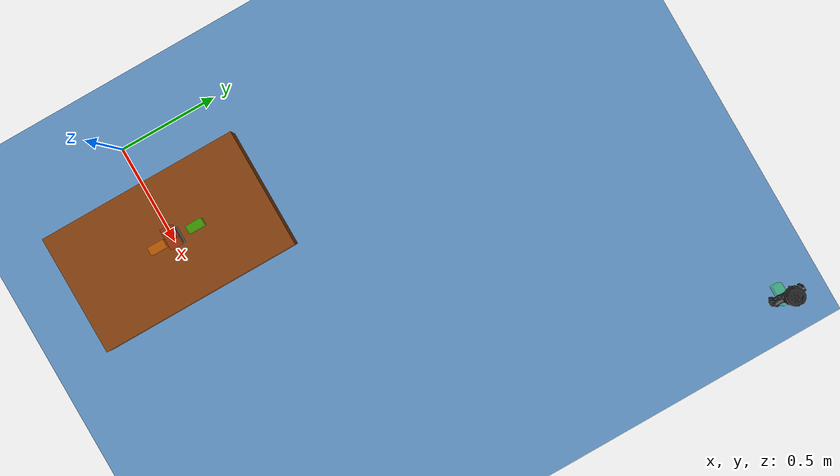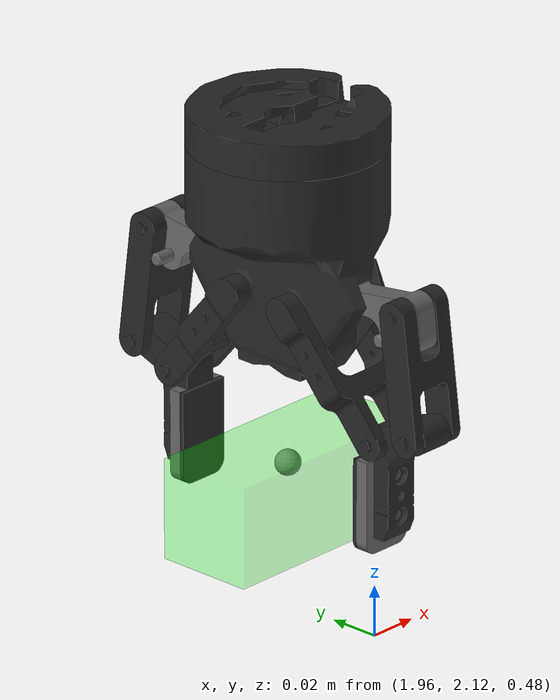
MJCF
<mujoco model="unnamed_model">
  <compiler autolimits="true" angle="radian"/>
  <option timestep="0.001" gravity="0 0 -9.8100000000000005" integrator="implicitfast"/>
  <statistic meansize="0.029999999999999999" extent="0.29999999999999999" center="0.29999999999999999 0 0"/>
  <default>
    <default class="/"/>
    <default class="lab/"/>
    <default class="wall/"/>
    <default class="block_green/"/>
    <default class="block_orange/"/>
    <default class="block_blue/"/>
    <default class="lego_bricks/"/>
    <default class="lego_bricks_1/"/>
    <default class="lego_bricks_2/"/>
    <default class="gripper_collision_with_block/2f85">
      <mesh scale="0.001 0.001 0.001"/>
      <joint axis="1 0 0"/>
      <geom margin="0.001"/>
      <general biastype="affine"/>
      <default class="gripper_collision_with_block/visual2">
        <geom type="mesh" contype="0" conaffinity="0" group="2" material="gripper_collision_with_block/gray2"/>
      </default>
      <default class="gripper_collision_with_block/driver">
        <joint solreflimit="0.00500 1" solimplimit="0.94999999999999996 0.98999999999999999 0.001" range="0 0.80000000000000004" armature="0.00500" damping="0.100"/>
      </default>
      <default class="gripper_collision_with_block/follower">
        <joint pos="0 -0.017999999999999999 0.0064999999999999997" solreflimit="0.00500 1" solimplimit="0.94999999999999996 0.98999999999999999 0.001" range="-0.872664 0.872664"/>
      </default>
      <default class="gripper_collision_with_block/spring_link">
        <joint stiffness="0.050000000000000003" range="-0.29670597283 0.80000000000000004" springref="2.62" damping="0.00125"/>
      </default>
      <default class="gripper_collision_with_block/coupler">
        <joint solreflimit="0.00500 1" solimplimit="0.94999999999999996 0.98999999999999999 0.001" range="-1.57 0"/>
      </default>
      <default class="gripper_collision_with_block/collision2">
        <geom type="box" condim="3" group="3" rgba="1 0.42352899999999999 0.039215699999999999 1"/>
        <default class="gripper_collision_with_block/pad_box1">
          <geom type="box" priority="1" size="0.029999999999999999 0.01 0.02" rgba="0.55000000000000004 0.55000000000000004 0.55000000000000004 1" friction="0.69999999999999996" mass="0" solref="0.00400 1" solimp="0.94999999999999996 0.98999999999999999 0.001" pos="0 -0.0025999999999999999 0.028125000000000001"/>
        </default>
        <default class="gripper_collision_with_block/pad_box2">
          <geom type="box" priority="1" size="0.010999999999999999 0.00400 0.0093749999999999997" rgba="0.450 0.450 0.450 1" friction="0.59999999999999998" mass="0" solref="0.00400 1" solimp="0.94999999999999996 0.98999999999999999 0.001" pos="0 -0.0025999999999999999 0.0093749999999999997"/>
        </default>
      </default>
    </default>
  </default>
  <asset>
    <texture name="lab//unnamed_texture_0" type="skybox" builtin="gradient" rgb1="0.59999999999999998 0.80000000000000004 1" rgb2="0.200 0.200 0.200" width="512" height="3072"/>
    <texture name="lab/groundplane" type="2d" builtin="checker" rgb1="0.5 0.69999999999999996 0.9" rgb2="0.29999999999999999 0.5 0.69999999999999996" mark="edge" markrgb="0.9 0.9 0.9" width="300" height="300"/>
    <material name="lab/groundplane" class="lab/" texture="lab/groundplane" texrepeat="5 5" texuniform="true" reflectance="0.4"/>
    <material name="wall/wood" class="wall/" specular="0.100" shininess="0.200" reflectance="0.050000000000000003" rgba="0.55000000000000004 0.27000000000000002 0.070000000000000007 1"/>
    <material name="wall/aluminum" class="wall/" specular="0.80000000000000004" shininess="0.9" reflectance="0.59999999999999998" rgba="0.80000000000000004 0.80000000000000004 0.80000000000000004 1"/>
    <material name="gripper_collision_with_block/black2" class="gripper_collision_with_block/2f85" rgba="0.14899999999999999 0.14899999999999999 0.14899999999999999 1"/>
    <material name="gripper_collision_with_block/wood2" class="gripper_collision_with_block/2f85" rgba="0.56000000000000005 0.37 0.28999999999999998 1"/>
    <material name="gripper_collision_with_block/gray2" class="gripper_collision_with_block/2f85" rgba="0.4 0.4 0.4 1"/>
    <mesh name="gripper_collision_with_block/base_mount" class="gripper_collision_with_block/2f85" file="base_mount-22e57178defe77afb6bdd333bfae16607f1eb3dd.stl"/>
    <mesh name="gripper_collision_with_block/base" class="gripper_collision_with_block/2f85" file="base-e5dacbcc3971bfdb549ff8c7d38ea873ca7f2933.stl"/>
    <mesh name="gripper_collision_with_block/driver" class="gripper_collision_with_block/2f85" file="driver-97efa43184c575b31ff1f3980641896f51492762.stl"/>
    <mesh name="gripper_collision_with_block/coupler" class="gripper_collision_with_block/2f85" file="coupler-0a4240dc94992944cca6ec9e270ff1658fa86c55.stl"/>
    <mesh name="gripper_collision_with_block/follower" class="gripper_collision_with_block/2f85" file="follower-39e4b8048f1395ee38cb45b37b5fec0e6f2aaec9.stl"/>
    <mesh name="gripper_collision_with_block/pad" class="gripper_collision_with_block/2f85" file="pad-e6a633b2c81740b1f783ec4c6e695c8cc570f09d.stl"/>
    <mesh name="gripper_collision_with_block/silicone_pad" class="gripper_collision_with_block/2f85" file="silicone_pad-c284384f3ca6dcdc24d6188a5d1a2d4c42c412ac.stl"/>
    <mesh name="gripper_collision_with_block/spring_link" class="gripper_collision_with_block/2f85" file="spring_link-8f50234325193b84e9f86b7a63a24560a389c9bf.stl"/>
  </asset>
  <worldbody>
    <body name="ground" mocap="false" pos="0 0 0">
      <site name="ground_site_attach" class="/"/>
    </body>
    <body name="lab/">
      <light name="lab//unnamed_light_0" class="lab/" directional="true" pos="0 0 1.5" dir="0 0 -1"/>
      <geom name="lab/floor" class="lab/" type="plane" size="0 0 0.050000000000000003" material="lab/groundplane"/>
      <site name="lab/ground_attach" class="lab/" group="0" rgba="1 0 0 1" size="0.01" pos="0 0 0"/>
      </body>
    <body name="wall1" mocap="false" pos="0.5 0 0" quat="0.707 0 0 0.707">
      <site name="wall1_site_attach" class="/"/>
      <body name="wall/">
        <body name="wall/Wall" pos="0 0 0">
          <geom name="wall/table_geom" class="wall/" type="box" condim="3" size="0.5 0.29999999999999999 0.058000000000000003" material="wall/wood" pos="0 0 0.058000000000000003"/>
        </body>
      </body>
    </body>
    <body pos="0.5 0.15 0.116" quat="0.707 0 0 0.707" name="block_green/">
      <freejoint name="block_green/"/>
      <body name="block_green/block_green" pos="0 0 0.02">
        <geom name="block_green/block_green_geom" class="block_green/" type="box" contype="2" conaffinity="1" condim="3" size="0.0400 0.02 0.02" rgba="0 1 0 0.5"/>
        <inertial pos="0 0 0" mass="0.200" diaginertia="0.000230 9.2e-05 0.000230"/>
      </body>
    </body>
    <body pos="0.5 -0.05 0.116" quat="0.707 0 0 0.707" name="block_orange/">
      <freejoint name="block_orange/"/>
      <body name="block_orange/block_orange" pos="0 0 0.02">
        <geom name="block_orange/block_orange_geom" class="block_orange/" type="box" contype="2" conaffinity="1" condim="3" size="0.0400 0.02 0.02" rgba="1 0.5 0 0.5"/>
        <inertial pos="0 0 0" mass="0.200" diaginertia="0.000230 9.2e-05 0.000230"/>
      </body>
    </body>
    <body pos="0.5 0.15 0.116" quat="0.707 0 0 0.707" name="block_blue/">
      <freejoint name="block_blue/"/>
      <body name="block_blue/block_blue" pos="0 0 0.02">
        <geom name="block_blue/block_blue_geom" class="block_blue/" type="box" contype="2" conaffinity="1" condim="3" size="0.0400 0.02 0.02" rgba="0 0 1 0.5"/>
        <inertial pos="0 0 0" mass="0.200" diaginertia="0.000230 9.2e-05 0.000230"/>
      </body>
    </body>
    <body name="blockwall1" mocap="false" pos="0.5 0.050000000000000003 0.116">
      <site name="blockwall1_site_attach" class="/"/>
      <body name="lego_bricks/">
        <body name="lego_bricks/block_cyan" pos="0 0 0.02">
          <geom name="lego_bricks/block_cyan_geom" class="lego_bricks/" type="box" condim="1" size="0.0400 0.02 0.02" rgba="0 1 1 0.5"/>
          <inertial pos="0 0 0" mass="0.200" diaginertia="0.000230 9.2e-05 0.000230"/>
        </body>
      </body>
    </body>
    <body name="blockwall2" mocap="false" pos="0.5 0.050000000000000003 0.156">
      <site name="blockwall2_site_attach" class="/"/>
      <body name="lego_bricks_1/">
        <body name="lego_bricks_1/block_magenta" pos="0 0 0.02">
          <geom name="lego_bricks_1/block_magenta_geom" class="lego_bricks_1/" type="box" condim="1" size="0.0400 0.02 0.02" rgba="1 0 1 0.5"/>
          <inertial pos="0 0 0" mass="0.200" diaginertia="0.000230 9.2e-05 0.000230"/>
        </body>
      </body>
    </body>
    <body name="blockwall3" mocap="false" pos="0.5 0.050000000000000003 0.196">
      <site name="blockwall3_site_attach" class="/"/>
      <body name="lego_bricks_2/">
        <body name="lego_bricks_2/block_yellow" pos="0 0 0.02">
          <geom name="lego_bricks_2/block_yellow_geom" class="lego_bricks_2/" type="box" contype="4" conaffinity="4" condim="1" size="0.0400 0.02 0.02" rgba="1 1 0 0.5"/>
          <geom name="lego_bricks_2/block_yellow_collision" class="lego_bricks_2/" type="box" contype="4" conaffinity="4" condim="1" group="2" size="0.050000000000000003 0.0250 0.029999999999999999" rgba="1 0 0 0.100" pos="0 0 0.01"/>
          <inertial pos="0 0 0" mass="0.200" diaginertia="0.000230 9.2e-05 0.000230"/>
        </body>
      </body>
    </body>
    <body pos="2 2.2000000000000002 0.5" name="gripper_collision_with_block/">
      <freejoint name="gripper_collision_with_block/"/>
      <body name="gripper_collision_with_block/base_mount" childclass="gripper_collision_with_block/2f85" pos="0 0 0.14499999999999999" quat="0 1 0 0">
        <inertial pos="0 0 0" quat="1 0 0 0" mass="0.0001" diaginertia="9.9999999999999995e-07 9.9999999999999995e-07 9.9999999999999995e-07"/>
        <geom name="gripper_collision_with_block//unnamed_geom_0" class="gripper_collision_with_block/visual2" material="gripper_collision_with_block/black2" mesh="gripper_collision_with_block/base_mount"/>
        <geom name="gripper_collision_with_block/col_mount" type="cylinder" contype="1" conaffinity="1" group="3" size="0.0400 0.022499999999999999" rgba="1 0.42352899999999999 0.039215699999999999 1" pos="0 0 0.016"/>
        <body name="gripper_collision_with_block/base" pos="0 0 0.0038">
          <body name="gripper_collision_with_block/gripping_point" pos="0 0 0.13">
            <site name="gripper_collision_with_block/gripping_point" pos="0 0 0"/>
            <geom name="gripper_collision_with_block/gripper_collision" type="box" contype="4" conaffinity="1" condim="1" group="1" size="0.044999999999999998 0.02 0.02" rgba="0 1 0 0.29999999999999999" pos="0 0 0.01"/>
          </body>
          <inertial pos="0 -2.7039400000000001e-05 0.035467499999999999" quat="1 -0.00152849 0 0" mass="0.77744100000000005" diaginertia="0.00026028500000000002 0.000225381 0.00015270799999999999"/>
          <geom name="gripper_collision_with_block//unnamed_geom_3" class="gripper_collision_with_block/visual2" material="gripper_collision_with_block/black2" mesh="gripper_collision_with_block/base"/>
          <geom name="gripper_collision_with_block/col_base" type="box" contype="1" conaffinity="1" group="3" size="0.0125 0.029999999999999999 0.050000000000000003" rgba="1 0.42352899999999999 0.039215699999999999 1" pos="0 0 0.037999999999999999"/>
          <site name="gripper_collision_with_block/pinch" type="sphere" group="8" material="gripper_collision_with_block/wood2" size="0.00500" pos="0 0 0.14499999999999999"/>
          <body name="gripper_collision_with_block/right_driver" pos="0 0.030601099999999999 0.054904000000000001">
            <inertial pos="2.96931e-12 0.017754700000000002 0.00107314" quat="0.68130100000000005 0.73200299999999996 0 0" mass="0.0089956299999999993" diaginertia="1.72352e-06 1.6090599999999999e-06 3.22006e-07"/>
            <geom name="gripper_collision_with_block//unnamed_geom_5" class="gripper_collision_with_block/visual2" material="gripper_collision_with_block/gray2" mesh="gripper_collision_with_block/driver"/>
            <body name="gripper_collision_with_block/right_coupler" pos="0 0.0315 -0.0041000000000000003">
              <inertial pos="0 0.0030120899999999998 0.023217499999999999" quat="0.70563600000000004 -0.045590400000000003 0.045590400000000003 0.70563600000000004" mass="0.0140974" diaginertia="4.1620600000000001e-06 3.5221600000000001e-06 8.8813100000000003e-07"/>
              <geom name="gripper_collision_with_block//unnamed_geom_6" class="gripper_collision_with_block/visual2" material="gripper_collision_with_block/black2" mesh="gripper_collision_with_block/coupler"/>
              <geom name="gripper_collision_with_block/col_right_coupler" type="box" contype="1" conaffinity="1" group="3" size="0.0051392800000000004 0.012750900000000001 0.026890899999999999" rgba="1 0 0 1" pos="0 0.0030120899999999998 0.023217499999999999" quat="0.70563600000000004 -0.045590400000000003 0.045590400000000003 0.70563600000000004"/>
            </body>
          </body>
          <body name="gripper_collision_with_block/right_spring_link" pos="0 0.0132 0.060900000000000003">
            <inertial pos="-8.6500500000000008e-09 0.018162399999999999 0.021265800000000001" quat="0.66340299999999996 -0.24473700000000001 0.24473700000000001 0.66340299999999996" mass="0.022164199999999998" diaginertia="8.9685299999999993e-06 6.7173299999999996e-06 2.6393100000000001e-06"/>
            <geom name="gripper_collision_with_block//unnamed_geom_8" class="gripper_collision_with_block/visual2" material="gripper_collision_with_block/black2" mesh="gripper_collision_with_block/spring_link"/>
            <body name="gripper_collision_with_block/right_follower" pos="0 0.055 0.037499999999999999">
              <inertial pos="0 -0.011046 0.012478599999999999" quat="1 0.16639999999999999 0 0" mass="0.012522200000000001" diaginertia="2.6741500000000001e-06 2.4559000000000001e-06 6.0203100000000003e-07"/>
              <geom name="gripper_collision_with_block//unnamed_geom_9" class="gripper_collision_with_block/visual2" material="gripper_collision_with_block/black2" mesh="gripper_collision_with_block/follower"/>
              <body name="gripper_collision_with_block/right_pad" pos="0 -0.0189 0.013520000000000001">
                <geom name="gripper_collision_with_block/right_pad1" class="gripper_collision_with_block/pad_box1" contype="1" conaffinity="1" margin="0.100" pos="0 -0.02 0"/>
                <inertial pos="0 -0.00250 0.018499999999999999" quat="0.70710700000000004 0 0 0.70710700000000004" mass="0.00350" diaginertia="4.7395799999999999e-07 3.6458299999999998e-07 1.23958e-07"/>
                <geom name="gripper_collision_with_block//unnamed_geom_11" class="gripper_collision_with_block/visual2" mesh="gripper_collision_with_block/pad"/>
                <body name="gripper_collision_with_block/right_silicone_pad">
                  <geom name="gripper_collision_with_block//unnamed_geom_12" class="gripper_collision_with_block/visual2" material="gripper_collision_with_block/black2" mesh="gripper_collision_with_block/silicone_pad"/>
                </body>
              </body>
            </body>
          </body>
          <body name="gripper_collision_with_block/left_driver" pos="0 -0.030601099999999999 0.054904000000000001" quat="0 0 0 1">
            <inertial pos="0 0.017754700000000002 0.00107314" quat="0.68130100000000005 0.73200299999999996 0 0" mass="0.0089956299999999993" diaginertia="1.72352e-06 1.6090599999999999e-06 3.22006e-07"/>
            <geom name="gripper_collision_with_block//unnamed_geom_13" class="gripper_collision_with_block/visual2" material="gripper_collision_with_block/gray2" mesh="gripper_collision_with_block/driver"/>
            <body name="gripper_collision_with_block/left_coupler" pos="0 0.0315 -0.0041000000000000003">
              <inertial pos="0 0.0030120899999999998 0.023217499999999999" quat="0.70563600000000004 -0.045590400000000003 0.045590400000000003 0.70563600000000004" mass="0.0140974" diaginertia="4.1620600000000001e-06 3.5221600000000001e-06 8.8813100000000003e-07"/>
              <geom name="gripper_collision_with_block//unnamed_geom_14" class="gripper_collision_with_block/visual2" material="gripper_collision_with_block/black2" mesh="gripper_collision_with_block/coupler"/>
              <geom name="gripper_collision_with_block/col_left_coupler" type="box" contype="1" conaffinity="1" group="3" size="0.0051392800000000004 0.012750900000000001 0.026890899999999999" rgba="1 0 0 1" pos="0 0.0030120899999999998 0.023217499999999999" quat="0.70563600000000004 -0.045590400000000003 0.045590400000000003 0.70563600000000004"/>
            </body>
          </body>
          <body name="gripper_collision_with_block/left_spring_link" pos="0 -0.0132 0.060900000000000003" quat="0 0 0 1">
            <inertial pos="-8.6500500000000008e-09 0.018162399999999999 0.021265800000000001" quat="0.66340299999999996 -0.24473700000000001 0.24473700000000001 0.66340299999999996" mass="0.022164199999999998" diaginertia="8.9685299999999993e-06 6.7173299999999996e-06 2.6393100000000001e-06"/>
            <geom name="gripper_collision_with_block//unnamed_geom_16" class="gripper_collision_with_block/visual2" material="gripper_collision_with_block/black2" mesh="gripper_collision_with_block/spring_link"/>
            <body name="gripper_collision_with_block/left_follower" pos="0 0.055 0.037499999999999999">
              <inertial pos="0 -0.011046 0.012478599999999999" quat="1 0.16639999999999999 0 0" mass="0.012522200000000001" diaginertia="2.6741500000000001e-06 2.4559000000000001e-06 6.0203100000000003e-07"/>
              <geom name="gripper_collision_with_block//unnamed_geom_17" class="gripper_collision_with_block/visual2" material="gripper_collision_with_block/black2" mesh="gripper_collision_with_block/follower"/>
              <body name="gripper_collision_with_block/left_pad" pos="0 -0.0189 0.013520000000000001">
                <geom name="gripper_collision_with_block/left_pad1" class="gripper_collision_with_block/pad_box1" contype="1" conaffinity="1" pos="0 -0.02 0"/>
                <inertial pos="0 -0.00250 0.018499999999999999" quat="1 0 0 1" mass="0.00350" diaginertia="4.7395799999999999e-07 3.6458299999999998e-07 1.23958e-07"/>
                <geom name="gripper_collision_with_block//unnamed_geom_19" class="gripper_collision_with_block/visual2" mesh="gripper_collision_with_block/pad"/>
                <body name="gripper_collision_with_block/left_silicone_pad">
                  <geom name="gripper_collision_with_block//unnamed_geom_20" class="gripper_collision_with_block/visual2" material="gripper_collision_with_block/black2" mesh="gripper_collision_with_block/silicone_pad"/>
                </body>
              </body>
            </body>
          </body>
        </body>
      </body>
    </body>
  </worldbody>
  <contact>
    <exclude name="gripper_collision_with_block//unnamed_contact_0" body1="gripper_collision_with_block/base" body2="gripper_collision_with_block/left_driver"/>
    <exclude name="gripper_collision_with_block//unnamed_contact_1" body1="gripper_collision_with_block/base" body2="gripper_collision_with_block/right_driver"/>
    <exclude name="gripper_collision_with_block//unnamed_contact_2" body1="gripper_collision_with_block/base" body2="gripper_collision_with_block/left_spring_link"/>
    <exclude name="gripper_collision_with_block//unnamed_contact_3" body1="gripper_collision_with_block/base" body2="gripper_collision_with_block/right_spring_link"/>
    <exclude name="gripper_collision_with_block//unnamed_contact_4" body1="gripper_collision_with_block/right_coupler" body2="gripper_collision_with_block/right_follower"/>
    <exclude name="gripper_collision_with_block//unnamed_contact_5" body1="gripper_collision_with_block/left_coupler" body2="gripper_collision_with_block/left_follower"/>
  </contact>
</mujoco>
